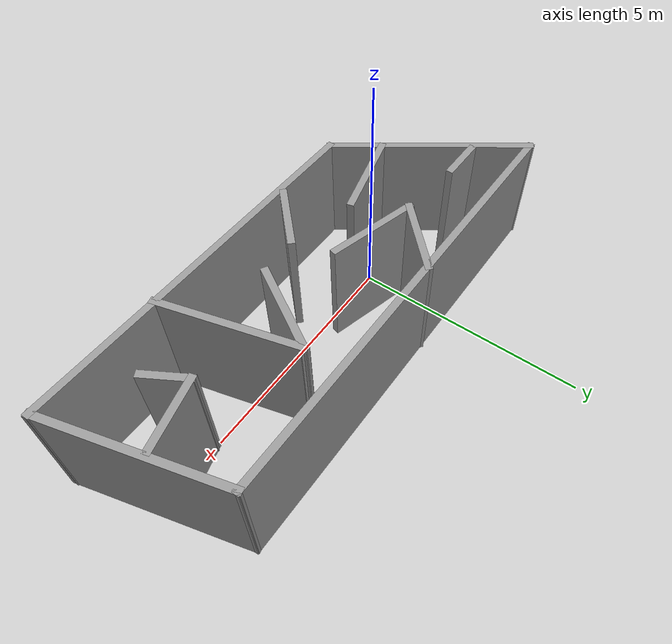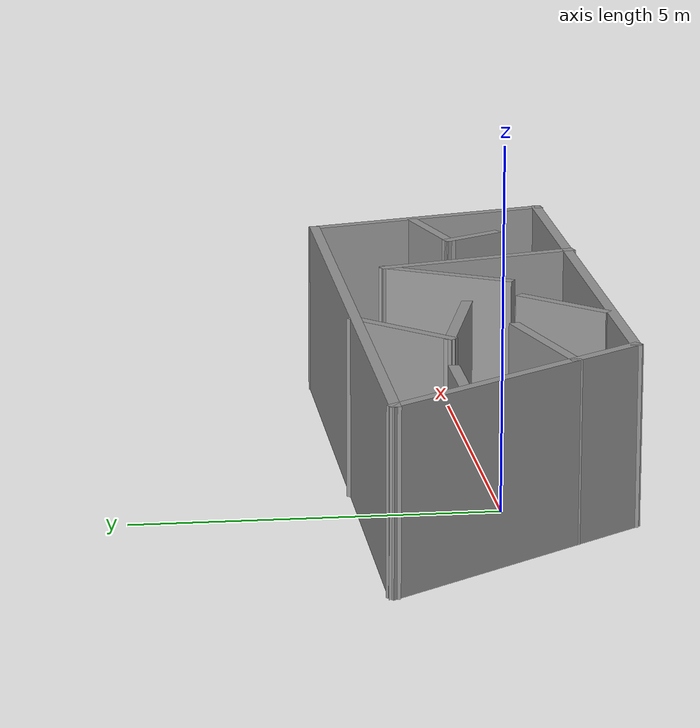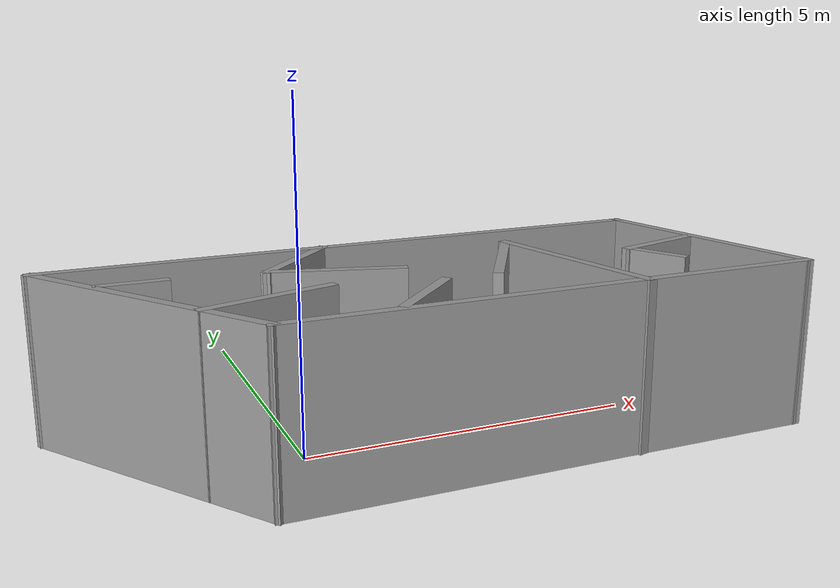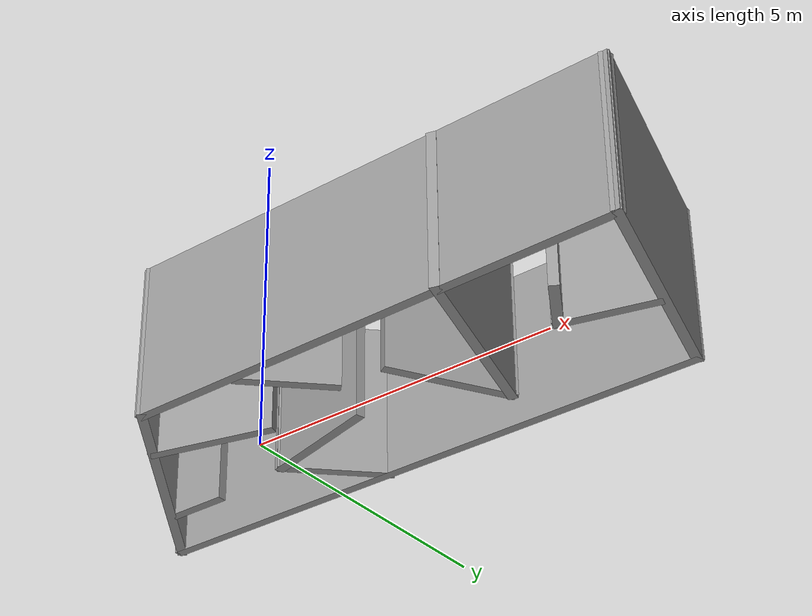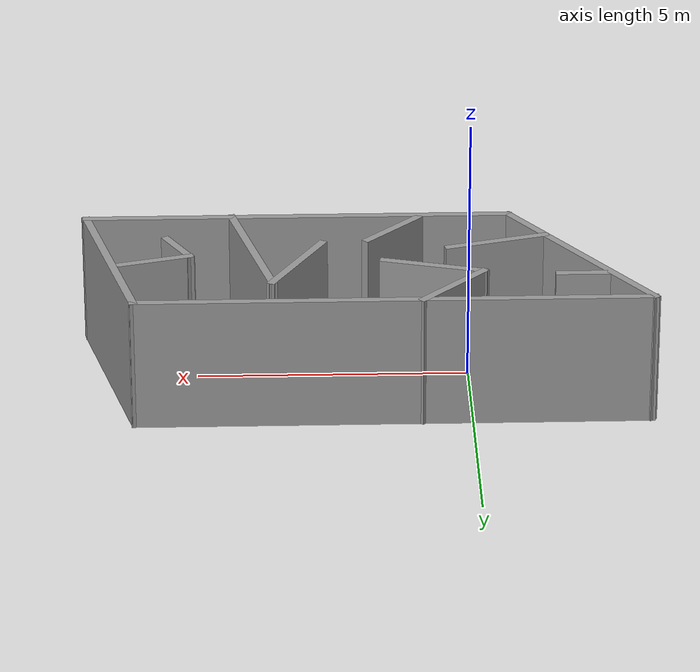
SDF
<?xml version='1.0'?>
<sdf version='1.7'>
  <model name='ROOM'>
    <pose>1.90283 0.120697 0 0 -0 0</pose>
    <link name='Wall_0'>
      <collision name='Wall_0_Collision'>
        <geometry>
          <box>
            <size>8 0.15 2.5</size>
          </box>
        </geometry>
        <pose>0 0 1.25 0 -0 0</pose>
      </collision>
      <visual name='Wall_0_Visual'>
        <pose>0 0 1.25 0 -0 0</pose>
        <geometry>
          <box>
            <size>8 0.15 2.5</size>
          </box>
        </geometry>
        <material>
          <script>
            <uri>file://media/materials/scripts/gazebo.material</uri>
            <name>Gazebo/Grey</name>
          </script>
          <ambient>1 1 1 1</ambient>
        </material>
        <meta>
          <layer>0</layer>
        </meta>
      </visual>
      <pose>1.22217 -1.7407 0 0 -0 0</pose>
    </link>
    <link name='Wall_1'>
      <collision name='Wall_1_Collision'>
        <geometry>
          <box>
            <size>3.75 0.15 2.5</size>
          </box>
        </geometry>
        <pose>0 0 1.25 0 -0 0</pose>
      </collision>
      <visual name='Wall_1_Visual'>
        <pose>0 0 1.25 0 -0 0</pose>
        <geometry>
          <box>
            <size>3.75 0.15 2.5</size>
          </box>
        </geometry>
        <material>
          <script>
            <uri>file://media/materials/scripts/gazebo.material</uri>
            <name>Gazebo/Grey</name>
          </script>
          <ambient>1 1 1 1</ambient>
        </material>
        <meta>
          <layer>0</layer>
        </meta>
      </visual>
      <pose>4.68129 -0.00203 0 0 -0 1.8326</pose>
    </link>
    <link name='Wall_11'>
      <collision name='Wall_11_Collision'>
        <geometry>
          <box>
            <size>1.5 0.15 2.5</size>
          </box>
        </geometry>
        <pose>0 0 1.25 0 -0 0</pose>
      </collision>
      <visual name='Wall_11_Visual'>
        <pose>0 0 1.25 0 -0 0</pose>
        <geometry>
          <box>
            <size>1.5 0.15 2.5</size>
          </box>
        </geometry>
        <material>
          <script>
            <uri>file://media/materials/scripts/gazebo.material</uri>
            <name>Gazebo/Grey</name>
          </script>
          <ambient>1 1 1 1</ambient>
        </material>
        <meta>
          <layer>0</layer>
        </meta>
      </visual>
      <pose>3.8728 0.045865 0 0 -0 -2.87979</pose>
    </link>
    <link name='Wall_12'>
      <collision name='Wall_12_Collision'>
        <geometry>
          <box>
            <size>1 0.15 2.5</size>
          </box>
        </geometry>
        <pose>0 0 1.25 0 -0 0</pose>
      </collision>
      <visual name='Wall_12_Visual'>
        <pose>0 0 1.25 0 -0 0</pose>
        <geometry>
          <box>
            <size>1 0.15 2.5</size>
          </box>
        </geometry>
        <material>
          <script>
            <uri>file://media/materials/scripts/gazebo.material</uri>
            <name>Gazebo/Grey</name>
          </script>
          <ambient>1 1 1 1</ambient>
        </material>
        <meta>
          <layer>0</layer>
        </meta>
      </visual>
      <pose>3.4333 -0.496899 0 0 -0 -1.0472</pose>
    </link>
    <link name='Wall_14'>
      <collision name='Wall_14_Collision'>
        <geometry>
          <box>
            <size>2 0.15 2.5</size>
          </box>
        </geometry>
        <pose>0 0 1.25 0 -0 0</pose>
      </collision>
      <visual name='Wall_14_Visual'>
        <pose>0 0 1.25 0 -0 0</pose>
        <geometry>
          <box>
            <size>2 0.15 2.5</size>
          </box>
        </geometry>
        <material>
          <script>
            <uri>file://media/materials/scripts/gazebo.material</uri>
            <name>Gazebo/Grey</name>
          </script>
          <ambient>1 1 1 1</ambient>
        </material>
        <meta>
          <layer>0</layer>
        </meta>
      </visual>
      <pose>-2.43129 -0.592649 0 0 -0 0.261799</pose>
    </link>
    <link name='Wall_16'>
      <collision name='Wall_16_Collision'>
        <geometry>
          <box>
            <size>1 0.15 2.5</size>
          </box>
        </geometry>
        <pose>0 0 1.25 0 -0 0</pose>
      </collision>
      <visual name='Wall_16_Visual'>
        <pose>0 0 1.25 0 -0 0</pose>
        <geometry>
          <box>
            <size>1 0.15 2.5</size>
          </box>
        </geometry>
        <material>
          <script>
            <uri>file://media/materials/scripts/gazebo.material</uri>
            <name>Gazebo/Grey</name>
          </script>
          <ambient>1 1 1 1</ambient>
        </material>
        <meta>
          <layer>0</layer>
        </meta>
      </visual>
      <pose>-3.92232 0.761917 0 0 -0 0</pose>
    </link>
    <link name='Wall_18'>
      <collision name='Wall_18_Collision'>
        <geometry>
          <box>
            <size>1.5 0.15 2.5</size>
          </box>
        </geometry>
        <pose>0 0 1.25 0 -0 0</pose>
      </collision>
      <visual name='Wall_18_Visual'>
        <pose>0 0 1.25 0 -0 0</pose>
        <geometry>
          <box>
            <size>1.5 0.15 2.5</size>
          </box>
        </geometry>
        <material>
          <script>
            <uri>file://media/materials/scripts/gazebo.material</uri>
            <name>Gazebo/Grey</name>
          </script>
          <ambient>1 1 1 1</ambient>
        </material>
        <meta>
          <layer>0</layer>
        </meta>
      </visual>
      <pose>-0.531699 -1.16678 0 0 -0 0.785398</pose>
    </link>
    <link name='Wall_2'>
      <collision name='Wall_2_Collision'>
        <geometry>
          <box>
            <size>9.5 0.15 2.5</size>
          </box>
        </geometry>
        <pose>0 0 1.25 0 -0 0</pose>
      </collision>
      <visual name='Wall_2_Visual'>
        <pose>0 0 1.25 0 -0 0</pose>
        <geometry>
          <box>
            <size>9.5 0.15 2.5</size>
          </box>
        </geometry>
        <material>
          <script>
            <uri>file://media/materials/scripts/gazebo.material</uri>
            <name>Gazebo/Grey</name>
          </script>
          <ambient>1 1 1 1</ambient>
        </material>
        <meta>
          <layer>0</layer>
        </meta>
      </visual>
      <pose>-0.45958 1.73664 0 0 -0 3.14159</pose>
    </link>
    <link name='Wall_3'>
      <collision name='Wall_3_Collision'>
        <geometry>
          <box>
            <size>4.39326 0.15 2.5</size>
          </box>
        </geometry>
        <pose>0 0 1.25 0 -0 0</pose>
      </collision>
      <visual name='Wall_3_Visual'>
        <pose>0 0 1.25 0 -0 0</pose>
        <geometry>
          <box>
            <size>4.39326 0.15 2.5</size>
          </box>
        </geometry>
        <material>
          <script>
            <uri>file://media/materials/scripts/gazebo.material</uri>
            <name>Gazebo/Grey</name>
          </script>
          <ambient>1 1 1 1</ambient>
        </material>
        <meta>
          <layer>0</layer>
        </meta>
      </visual>
      <pose>-3.91871 -0.00203 0 0 -0 -0.960531</pose>
    </link>
    <link name='Wall_5'>
      <collision name='Wall_5_Collision'>
        <geometry>
          <box>
            <size>1.75 0.15 2.5</size>
          </box>
        </geometry>
        <pose>0 0 1.25 0 -0 0</pose>
      </collision>
      <visual name='Wall_5_Visual'>
        <pose>0 0 1.25 0 -0 0</pose>
        <geometry>
          <box>
            <size>1.75 0.15 2.5</size>
          </box>
        </geometry>
        <material>
          <script>
            <uri>file://media/materials/scripts/gazebo.material</uri>
            <name>Gazebo/Grey</name>
          </script>
          <ambient>1 1 1 1</ambient>
        </material>
        <meta>
          <layer>0</layer>
        </meta>
      </visual>
      <pose>-1.55558 1.18448 0 0 -0 -2.35619</pose>
    </link>
    <link name='Wall_6'>
      <collision name='Wall_6_Collision'>
        <geometry>
          <box>
            <size>2 0.15 2.5</size>
          </box>
        </geometry>
        <pose>0 0 1.25 0 -0 0</pose>
      </collision>
      <visual name='Wall_6_Visual'>
        <pose>0 0 1.25 0 -0 0</pose>
        <geometry>
          <box>
            <size>2 0.15 2.5</size>
          </box>
        </geometry>
        <material>
          <script>
            <uri>file://media/materials/scripts/gazebo.material</uri>
            <name>Gazebo/Grey</name>
          </script>
          <ambient>1 1 1 1</ambient>
        </material>
        <meta>
          <layer>0</layer>
        </meta>
      </visual>
      <pose>-1.22779 0.379391 0 0 -0 -0.261799</pose>
    </link>
    <link name='Wall_8'>
      <collision name='Wall_8_Collision'>
        <geometry>
          <box>
            <size>3 0.15 2.5</size>
          </box>
        </geometry>
        <pose>0 0 1.25 0 -0 0</pose>
      </collision>
      <visual name='Wall_8_Visual'>
        <pose>0 0 1.25 0 -0 0</pose>
        <geometry>
          <box>
            <size>3 0.15 2.5</size>
          </box>
        </geometry>
        <material>
          <script>
            <uri>file://media/materials/scripts/gazebo.material</uri>
            <name>Gazebo/Grey</name>
          </script>
          <ambient>1 1 1 1</ambient>
        </material>
        <meta>
          <layer>0</layer>
        </meta>
      </visual>
      <pose>2.08081 -0.387936 0 0 -0 1.8326</pose>
    </link>
    <link name='Wall_9'>
      <collision name='Wall_9_Collision'>
        <geometry>
          <box>
            <size>2 0.15 2.5</size>
          </box>
        </geometry>
        <pose>0 0 1.25 0 -0 0</pose>
      </collision>
      <visual name='Wall_9_Visual'>
        <pose>0 0 1.25 0 -0 0</pose>
        <geometry>
          <box>
            <size>2 0.15 2.5</size>
          </box>
        </geometry>
        <material>
          <script>
            <uri>file://media/materials/scripts/gazebo.material</uri>
            <name>Gazebo/Grey</name>
          </script>
          <ambient>1 1 1 1</ambient>
        </material>
        <meta>
          <layer>0</layer>
        </meta>
      </visual>
      <pose>1.24949 0.187435 0 0 -0 -2.0944</pose>
    </link>
    <static>1</static>
  </model>
</sdf>
